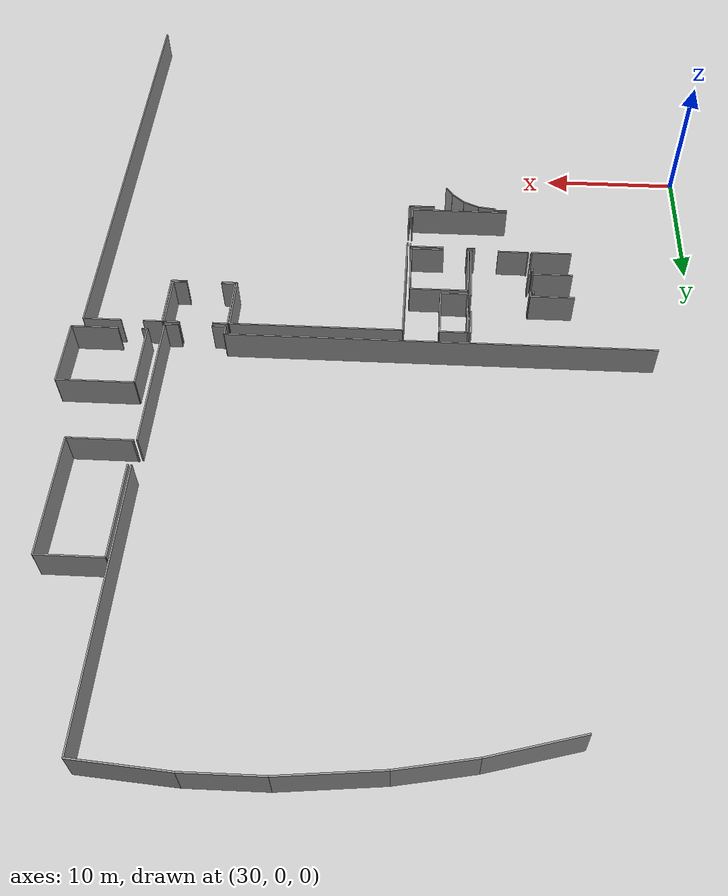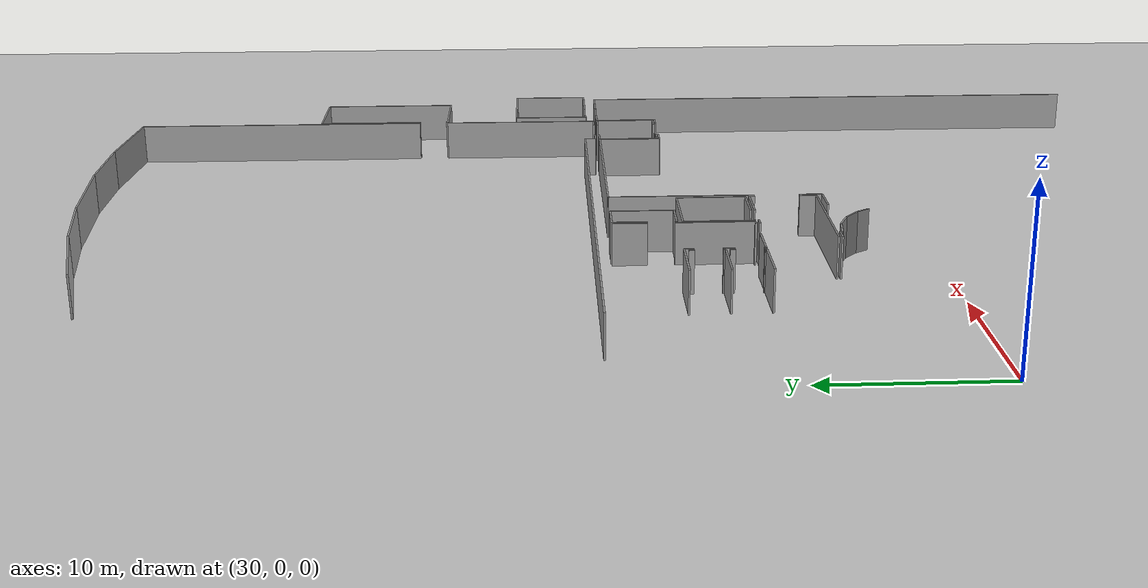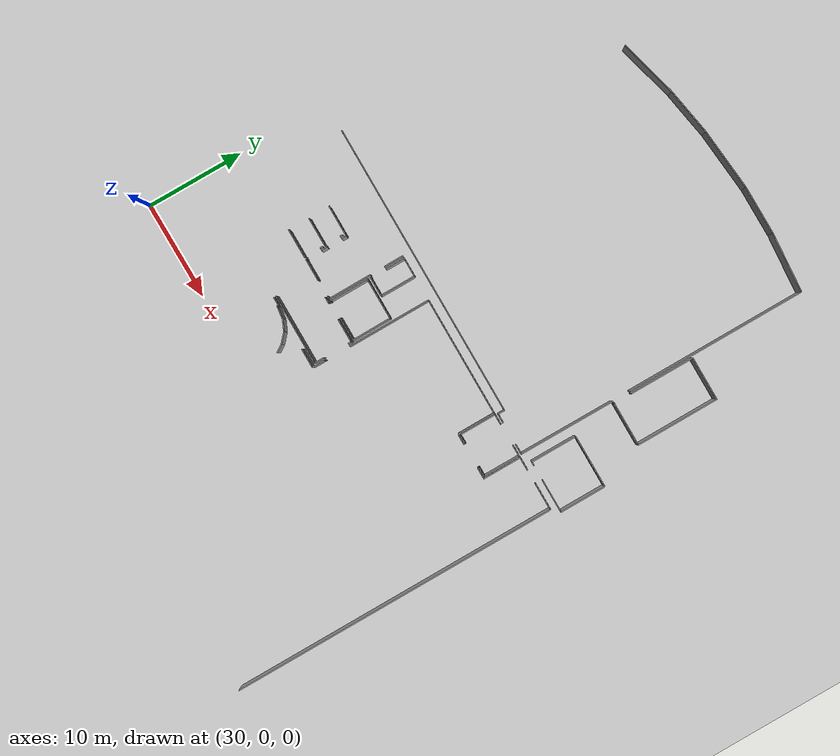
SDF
<sdf version="1.6">
 <world name="default">
  <model name="ground_plane">
   <static>1</static>
   <link name="link">
    <collision name="collision">
     <geometry><plane><normal>0 0 1</normal><size>100 100</size></plane></geometry>
     <surface><friction><ode><mu>100</mu><mu2>50</mu2></ode></friction></surface>
    </collision>
    <visual name="visual">
     <cast_shadows>0</cast_shadows>
     <geometry><plane><normal>0 0 1</normal><size>100 100</size></plane></geometry>
     <material>
      <script><uri>file://media/materials/scripts/gazebo.material</uri><name>Gazebo/Grey</name></script>
     </material>
    </visual>
   </link>
  </model>
  <model name="0510032218_A-40">
   <static>1</static>
   <link name="Wall_72">
    <collision name="Wall_72_Collision">
     <geometry><box><size>7.32015358741 0.1 2.5</size></box></geometry>
     <pose>3.6600767937 0 1.25 0 0 0</pose>
    </collision>
    <visual name="Wall_72_Visual">
     <pose>3.6600767937 0 1.25 0 0 0</pose>
     <geometry><box><size>7.32015358741 0.1 2.5</size></box></geometry>
     <material>
      <script><uri>file://media/materials/scripts/gazebo.material</uri><name>Gazebo/Grey</name></script>
      <ambient>1 1 1 1</ambient>
     </material>
    </visual>
    <pose>125.880328753 -43.4868149653 0 0 0 3.14159265359</pose>
   </link>
   <link name="Wall_82">
    <collision name="Wall_82_Collision">
     <geometry><box><size>0.630850760004 0.1 2.5</size></box></geometry>
     <pose>0.315425380002 0 1.25 0 0 0</pose>
    </collision>
    <visual name="Wall_82_Visual">
     <pose>0.315425380002 0 1.25 0 0 0</pose>
     <geometry><box><size>0.630850760004 0.1 2.5</size></box></geometry>
     <material>
      <script><uri>file://media/materials/scripts/gazebo.material</uri><name>Gazebo/Grey</name></script>
      <ambient>1 1 1 1</ambient>
     </material>
    </visual>
    <pose>120.999803256 -39.5045854092 0 0 0 0.0</pose>
   </link>
   <link name="Wall_83">
    <collision name="Wall_83_Collision">
     <geometry><box><size>2.49547805668 0.1 2.5</size></box></geometry>
     <pose>1.24773902834 0 1.25 0 0 0</pose>
    </collision>
    <visual name="Wall_83_Visual">
     <pose>1.24773902834 0 1.25 0 0 0</pose>
     <geometry><box><size>2.49547805668 0.1 2.5</size></box></geometry>
     <material>
      <script><uri>file://media/materials/scripts/gazebo.material</uri><name>Gazebo/Grey</name></script>
      <ambient>1 1 1 1</ambient>
     </material>
    </visual>
    <pose>123.379773427 -39.5045854092 0 0 0 0.0</pose>
   </link>
   <link name="Wall_84">
    <collision name="Wall_84_Collision">
     <geometry><box><size>0.340304001523 0.1 2.5</size></box></geometry>
     <pose>0.170152000762 0 1.25 0 0 0</pose>
    </collision>
    <visual name="Wall_84_Visual">
     <pose>0.170152000762 0 1.25 0 0 0</pose>
     <geometry><box><size>0.340304001523 0.1 2.5</size></box></geometry>
     <material>
      <script><uri>file://media/materials/scripts/gazebo.material</uri><name>Gazebo/Grey</name></script>
      <ambient>1 1 1 1</ambient>
     </material>
    </visual>
    <pose>125.875251484 -39.5045854092 0 0 0 -1.57079632679</pose>
   </link>
   <link name="Wall_85">
    <collision name="Wall_85_Collision">
     <geometry><box><size>0.99439623245 0.1 2.5</size></box></geometry>
     <pose>0.497198116225 0 1.25 0 0 0</pose>
    </collision>
    <visual name="Wall_85_Visual">
     <pose>0.497198116225 0 1.25 0 0 0</pose>
     <geometry><box><size>0.99439623245 0.1 2.5</size></box></geometry>
     <material>
      <script><uri>file://media/materials/scripts/gazebo.material</uri><name>Gazebo/Grey</name></script>
      <ambient>1 1 1 1</ambient>
     </material>
    </visual>
    <pose>125.875251484 -42.4924316949 0 0 0 -1.56569042274</pose>
   </link>
   <link name="Wall_123">
    <collision name="Wall_123_Collision">
     <geometry><box><size>0.313521403865 0.1 2.5</size></box></geometry>
     <pose>0.156760701933 0 1.25 0 0 0</pose>
    </collision>
    <visual name="Wall_123_Visual">
     <pose>0.156760701933 0 1.25 0 0 0</pose>
     <geometry><box><size>0.313521403865 0.1 2.5</size></box></geometry>
     <material>
      <script><uri>file://media/materials/scripts/gazebo.material</uri><name>Gazebo/Grey</name></script>
      <ambient>1 1 1 1</ambient>
     </material>
    </visual>
    <pose>121.318401929 -39.28537429 0 0 0 3.14159265359</pose>
   </link>
   <link name="Wall_124">
    <collision name="Wall_124_Collision">
     <geometry><box><size>2.28604068162 0.1 2.5</size></box></geometry>
     <pose>1.14302034081 0 1.25 0 0 0</pose>
    </collision>
    <visual name="Wall_124_Visual">
     <pose>1.14302034081 0 1.25 0 0 0</pose>
     <geometry><box><size>2.28604068162 0.1 2.5</size></box></geometry>
     <material>
      <script><uri>file://media/materials/scripts/gazebo.material</uri><name>Gazebo/Grey</name></script>
      <ambient>1 1 1 1</ambient>
     </material>
    </visual>
    <pose>119.264646336 -39.28537429 0 0 0 3.14159265359</pose>
   </link>
   <link name="Wall_125">
    <collision name="Wall_125_Collision">
     <geometry><box><size>0.102180052677 0.1 2.5</size></box></geometry>
     <pose>0.0510900263383 0 1.25 0 0 0</pose>
    </collision>
    <visual name="Wall_125_Visual">
     <pose>0.0510900263383 0 1.25 0 0 0</pose>
     <geometry><box><size>0.102180052677 0.1 2.5</size></box></geometry>
     <material>
      <script><uri>file://media/materials/scripts/gazebo.material</uri><name>Gazebo/Grey</name></script>
      <ambient>1 1 1 1</ambient>
     </material>
    </visual>
    <pose>116.978605655 -39.28537429 0 0 0 1.57079632679</pose>
   </link>
   <link name="Wall_126">
    <collision name="Wall_126_Collision">
     <geometry><box><size>0.64252848031 0.1 2.5</size></box></geometry>
     <pose>0.321264240155 0 1.25 0 0 0</pose>
    </collision>
    <visual name="Wall_126_Visual">
     <pose>0.321264240155 0 1.25 0 0 0</pose>
     <geometry><box><size>0.64252848031 0.1 2.5</size></box></geometry>
     <material>
      <script><uri>file://media/materials/scripts/gazebo.material</uri><name>Gazebo/Grey</name></script>
      <ambient>1 1 1 1</ambient>
     </material>
    </visual>
    <pose>116.978605655 -37.6187605115 0 0 0 1.57079632679</pose>
   </link>
   <link name="Wall_127">
    <collision name="Wall_127_Collision">
     <geometry><box><size>0.542506267255 0.1 2.5</size></box></geometry>
     <pose>0.271253133627 0 1.25 0 0 0</pose>
    </collision>
    <visual name="Wall_127_Visual">
     <pose>0.271253133627 0 1.25 0 0 0</pose>
     <geometry><box><size>0.542506267255 0.1 2.5</size></box></geometry>
     <material>
      <script><uri>file://media/materials/scripts/gazebo.material</uri><name>Gazebo/Grey</name></script>
      <ambient>1 1 1 1</ambient>
     </material>
    </visual>
    <pose>116.978605655 -35.423856821 0 0 0 1.57079632679</pose>
   </link>
   <link name="Wall_128">
    <collision name="Wall_128_Collision">
     <geometry><box><size>3.22228921398 0.1 2.5</size></box></geometry>
     <pose>1.61114460699 0 1.25 0 0 0</pose>
    </collision>
    <visual name="Wall_128_Visual">
     <pose>1.61114460699 0 1.25 0 0 0</pose>
     <geometry><box><size>3.22228921398 0.1 2.5</size></box></geometry>
     <material>
      <script><uri>file://media/materials/scripts/gazebo.material</uri><name>Gazebo/Grey</name></script>
      <ambient>1 1 1 1</ambient>
     </material>
    </visual>
    <pose>116.978605655 -34.8813505537 0 0 0 3.14159265359</pose>
   </link>
   <link name="Wall_131">
    <collision name="Wall_131_Collision">
     <geometry><box><size>2.01313743534 0.1 2.5</size></box></geometry>
     <pose>1.00656871767 0 1.25 0 0 0</pose>
    </collision>
    <visual name="Wall_131_Visual">
     <pose>1.00656871767 0 1.25 0 0 0</pose>
     <geometry><box><size>2.01313743534 0.1 2.5</size></box></geometry>
     <material>
      <script><uri>file://media/materials/scripts/gazebo.material</uri><name>Gazebo/Grey</name></script>
      <ambient>1 1 1 1</ambient>
     </material>
    </visual>
    <pose>121.305708755 -31.2202583061 0 0 0 -1.57079632679</pose>
   </link>
   <link name="Wall_132">
    <collision name="Wall_132_Collision">
     <geometry><box><size>4.51853399639 0.1 2.5</size></box></geometry>
     <pose>2.25926699819 0 1.25 0 0 0</pose>
    </collision>
    <visual name="Wall_132_Visual">
     <pose>2.25926699819 0 1.25 0 0 0</pose>
     <geometry><box><size>4.51853399639 0.1 2.5</size></box></geometry>
     <material>
      <script><uri>file://media/materials/scripts/gazebo.material</uri><name>Gazebo/Grey</name></script>
      <ambient>1 1 1 1</ambient>
     </material>
    </visual>
    <pose>121.305708755 -34.766858122 0 0 0 -1.5679871876</pose>
   </link>
   <link name="Wall_133">
    <collision name="Wall_133_Collision">
     <geometry><box><size>1.97378859518 0.1 2.5</size></box></geometry>
     <pose>0.986894297591 0 1.25 0 0 0</pose>
    </collision>
    <visual name="Wall_133_Visual">
     <pose>0.986894297591 0 1.25 0 0 0</pose>
     <geometry><box><size>1.97378859518 0.1 2.5</size></box></geometry>
     <material>
      <script><uri>file://media/materials/scripts/gazebo.material</uri><name>Gazebo/Grey</name></script>
      <ambient>1 1 1 1</ambient>
     </material>
    </visual>
    <pose>123.506705169 -34.8850315743 0 0 0 3.14159265359</pose>
   </link>
   <link name="Wall_134">
    <collision name="Wall_134_Collision">
     <geometry><box><size>0.0929140354774 0.1 2.5</size></box></geometry>
     <pose>0.0464570177387 0 1.25 0 0 0</pose>
    </collision>
    <visual name="Wall_134_Visual">
     <pose>0.0464570177387 0 1.25 0 0 0</pose>
     <geometry><box><size>0.0929140354774 0.1 2.5</size></box></geometry>
     <material>
      <script><uri>file://media/materials/scripts/gazebo.material</uri><name>Gazebo/Grey</name></script>
      <ambient>1 1 1 1</ambient>
     </material>
    </visual>
    <pose>121.532916574 -34.8850315743 0 0 0 1.57079632679</pose>
   </link>
   <link name="Wall_135">
    <collision name="Wall_135_Collision">
     <geometry><box><size>2.00310982769 0.1 2.5</size></box></geometry>
     <pose>1.00155491385 0 1.25 0 0 0</pose>
    </collision>
    <visual name="Wall_135_Visual">
     <pose>1.00155491385 0 1.25 0 0 0</pose>
     <geometry><box><size>2.00310982769 0.1 2.5</size></box></geometry>
     <material>
      <script><uri>file://media/materials/scripts/gazebo.material</uri><name>Gazebo/Grey</name></script>
      <ambient>1 1 1 1</ambient>
     </material>
    </visual>
    <pose>121.532916574 -33.2372036937 0 0 0 1.57079632679</pose>
   </link>
   <link name="Wall_136">
    <collision name="Wall_136_Collision">
     <geometry><box><size>1.97124996033 0.1 2.5</size></box></geometry>
     <pose>0.985624980167 0 1.25 0 0 0</pose>
    </collision>
    <visual name="Wall_136_Visual">
     <pose>0.985624980167 0 1.25 0 0 0</pose>
     <geometry><box><size>1.97124996033 0.1 2.5</size></box></geometry>
     <material>
      <script><uri>file://media/materials/scripts/gazebo.material</uri><name>Gazebo/Grey</name></script>
      <ambient>1 1 1 1</ambient>
     </material>
    </visual>
    <pose>121.532916574 -31.234093866 0 0 0 0.0</pose>
   </link>
   <link name="Wall_137">
    <collision name="Wall_137_Collision">
     <geometry><box><size>3.65093859085 0.1 2.5</size></box></geometry>
     <pose>1.82546929543 0 1.25 0 0 0</pose>
    </collision>
    <visual name="Wall_137_Visual">
     <pose>1.82546929543 0 1.25 0 0 0</pose>
     <geometry><box><size>3.65093859085 0.1 2.5</size></box></geometry>
     <material>
      <script><uri>file://media/materials/scripts/gazebo.material</uri><name>Gazebo/Grey</name></script>
      <ambient>1 1 1 1</ambient>
     </material>
    </visual>
    <pose>123.504166534 -31.234093866 0 0 0 -1.57010098915</pose>
   </link>
   <link name="Wall_138">
    <collision name="Wall_138_Collision">
     <geometry><box><size>2.96601402596 0.1 2.5</size></box></geometry>
     <pose>1.48300701298 0 1.25 0 0 0</pose>
    </collision>
    <visual name="Wall_138_Visual">
     <pose>1.48300701298 0 1.25 0 0 0</pose>
     <geometry><box><size>2.96601402596 0.1 2.5</size></box></geometry>
     <material>
      <script><uri>file://media/materials/scripts/gazebo.material</uri><name>Gazebo/Grey</name></script>
      <ambient>1 1 1 1</ambient>
     </material>
    </visual>
    <pose>116.748859201 -37.089201282 0 0 0 3.14159265359</pose>
   </link>
   <link name="Wall_141">
    <collision name="Wall_141_Collision">
     <geometry><box><size>0.307047885 0.1 2.5</size></box></geometry>
     <pose>0.1535239425 0 1.25 0 0 0</pose>
    </collision>
    <visual name="Wall_141_Visual">
     <pose>0.1535239425 0 1.25 0 0 0</pose>
     <geometry><box><size>0.307047885 0.1 2.5</size></box></geometry>
     <material>
      <script><uri>file://media/materials/scripts/gazebo.material</uri><name>Gazebo/Grey</name></script>
      <ambient>1 1 1 1</ambient>
     </material>
    </visual>
    <pose>116.739973979 -35.1165550725 0 0 0 -1.57079632679</pose>
   </link>
   <link name="Wall_142">
    <collision name="Wall_142_Collision">
     <geometry><box><size>0.120152544166 0.1 2.5</size></box></geometry>
     <pose>0.060076272083 0 1.25 0 0 0</pose>
    </collision>
    <visual name="Wall_142_Visual">
     <pose>0.060076272083 0 1.25 0 0 0</pose>
     <geometry><box><size>0.120152544166 0.1 2.5</size></box></geometry>
     <material>
      <script><uri>file://media/materials/scripts/gazebo.material</uri><name>Gazebo/Grey</name></script>
      <ambient>1 1 1 1</ambient>
     </material>
    </visual>
    <pose>116.739973979 -36.9693777171 0 0 0 -1.49677924949</pose>
   </link>
   <link name="Wall_143">
    <collision name="Wall_143_Collision">
     <geometry><box><size>3.00180877733 0.1 2.5</size></box></geometry>
     <pose>1.50090438866 0 1.25 0 0 0</pose>
    </collision>
    <visual name="Wall_143_Visual">
     <pose>1.50090438866 0 1.25 0 0 0</pose>
     <geometry><box><size>3.00180877733 0.1 2.5</size></box></geometry>
     <material>
      <script><uri>file://media/materials/scripts/gazebo.material</uri><name>Gazebo/Grey</name></script>
      <ambient>1 1 1 1</ambient>
     </material>
    </visual>
    <pose>116.760283058 -39.2905784914 0 0 0 3.14159265359</pose>
   </link>
   <link name="Wall_146">
    <collision name="Wall_146_Collision">
     <geometry><box><size>0.302986069241 0.1 2.5</size></box></geometry>
     <pose>0.151493034621 0 1.25 0 0 0</pose>
    </collision>
    <visual name="Wall_146_Visual">
     <pose>0.151493034621 0 1.25 0 0 0</pose>
     <geometry><box><size>0.302986069241 0.1 2.5</size></box></geometry>
     <material>
      <script><uri>file://media/materials/scripts/gazebo.material</uri><name>Gazebo/Grey</name></script>
      <ambient>1 1 1 1</ambient>
     </material>
    </visual>
    <pose>116.747589884 -37.3156475106 0 0 0 -1.57079632679</pose>
   </link>
   <link name="Wall_147">
    <collision name="Wall_147_Collision">
     <geometry><box><size>0.115950878798 0.1 2.5</size></box></geometry>
     <pose>0.0579754393991 0 1.25 0 0 0</pose>
    </collision>
    <visual name="Wall_147_Visual">
     <pose>0.0579754393991 0 1.25 0 0 0</pose>
     <geometry><box><size>0.115950878798 0.1 2.5</size></box></geometry>
     <material>
      <script><uri>file://media/materials/scripts/gazebo.material</uri><name>Gazebo/Grey</name></script>
      <ambient>1 1 1 1</ambient>
     </material>
    </visual>
    <pose>116.747589884 -39.1753244693 0 0 0 -1.46110622331</pose>
   </link>
   <link name="Wall_148">
    <collision name="Wall_148_Collision">
     <geometry><box><size>2.45105194682 0.1 2.5</size></box></geometry>
     <pose>1.22552597341 0 1.25 0 0 0</pose>
    </collision>
    <visual name="Wall_148_Visual">
     <pose>1.22552597341 0 1.25 0 0 0</pose>
     <geometry><box><size>2.45105194682 0.1 2.5</size></box></geometry>
     <material>
      <script><uri>file://media/materials/scripts/gazebo.material</uri><name>Gazebo/Grey</name></script>
      <ambient>1 1 1 1</ambient>
     </material>
    </visual>
    <pose>125.815593565 -39.2731888427 0 0 0 3.14159265359</pose>
   </link>
   <link name="Wall_149">
    <collision name="Wall_149_Collision">
     <geometry><box><size>0.124393107606 0.1 2.5</size></box></geometry>
     <pose>0.0621965538032 0 1.25 0 0 0</pose>
    </collision>
    <visual name="Wall_149_Visual">
     <pose>0.0621965538032 0 1.25 0 0 0</pose>
     <geometry><box><size>0.124393107606 0.1 2.5</size></box></geometry>
     <material>
      <script><uri>file://media/materials/scripts/gazebo.material</uri><name>Gazebo/Grey</name></script>
      <ambient>1 1 1 1</ambient>
     </material>
    </visual>
    <pose>121.644616507 -39.2731888427 0 0 0 3.14159265359</pose>
   </link>
   <link name="Wall_150">
    <collision name="Wall_150_Collision">
     <geometry><box><size>4.05584996668 0.1 2.5</size></box></geometry>
     <pose>2.02792498334 0 1.25 0 0 0</pose>
    </collision>
    <visual name="Wall_150_Visual">
     <pose>2.02792498334 0 1.25 0 0 0</pose>
     <geometry><box><size>4.05584996668 0.1 2.5</size></box></geometry>
     <material>
      <script><uri>file://media/materials/scripts/gazebo.material</uri><name>Gazebo/Grey</name></script>
      <ambient>1 1 1 1</ambient>
     </material>
    </visual>
    <pose>121.5202234 -39.2731888427 0 0 0 1.57079632679</pose>
   </link>
   <link name="Wall_151">
    <collision name="Wall_151_Collision">
     <geometry><box><size>4.2649065465 0.1 2.5</size></box></geometry>
     <pose>2.13245327325 0 1.25 0 0 0</pose>
    </collision>
    <visual name="Wall_151_Visual">
     <pose>2.13245327325 0 1.25 0 0 0</pose>
     <geometry><box><size>4.2649065465 0.1 2.5</size></box></geometry>
     <material>
      <script><uri>file://media/materials/scripts/gazebo.material</uri><name>Gazebo/Grey</name></script>
      <ambient>1 1 1 1</ambient>
     </material>
    </visual>
    <pose>121.5202234 -35.217338876 0 0 0 0.0</pose>
   </link>
   <link name="Wall_152">
    <collision name="Wall_152_Collision">
     <geometry><box><size>4.05596437167 0.1 2.5</size></box></geometry>
     <pose>2.02798218583 0 1.25 0 0 0</pose>
    </collision>
    <visual name="Wall_152_Visual">
     <pose>2.02798218583 0 1.25 0 0 0</pose>
     <geometry><box><size>4.05596437167 0.1 2.5</size></box></geometry>
     <material>
      <script><uri>file://media/materials/scripts/gazebo.material</uri><name>Gazebo/Grey</name></script>
      <ambient>1 1 1 1</ambient>
     </material>
    </visual>
    <pose>125.785129946 -35.217338876 0 0 0 -1.56328543621</pose>
   </link>
   <link name="Wall_159">
    <collision name="Wall_159_Collision">
     <geometry><box><size>0.888522197188 0.1 2.5</size></box></geometry>
     <pose>0.444261098594 0 1.25 0 0 0</pose>
    </collision>
    <visual name="Wall_159_Visual">
     <pose>0.444261098594 0 1.25 0 0 0</pose>
     <geometry><box><size>0.888522197188 0.1 2.5</size></box></geometry>
     <material>
      <script><uri>file://media/materials/scripts/gazebo.material</uri><name>Gazebo/Grey</name></script>
      <ambient>1 1 1 1</ambient>
     </material>
    </visual>
    <pose>118.561444483 -43.7017104052 0 0 0 0.0</pose>
   </link>
   <link name="Wall_160">
    <collision name="Wall_160_Collision">
     <geometry><box><size>0.145209913369 0.1 2.5</size></box></geometry>
     <pose>0.0726049566845 0 1.25 0 0 0</pose>
    </collision>
    <visual name="Wall_160_Visual">
     <pose>0.0726049566845 0 1.25 0 0 0</pose>
     <geometry><box><size>0.145209913369 0.1 2.5</size></box></geometry>
     <material>
      <script><uri>file://media/materials/scripts/gazebo.material</uri><name>Gazebo/Grey</name></script>
      <ambient>1 1 1 1</ambient>
     </material>
    </visual>
    <pose>119.44996668 -43.7017104052 0 0 0 -1.57079632679</pose>
   </link>
   <link name="Wall_161">
    <collision name="Wall_161_Collision">
     <geometry><box><size>1.29701786086 0.1 2.5</size></box></geometry>
     <pose>0.648508930432 0 1.25 0 0 0</pose>
    </collision>
    <visual name="Wall_161_Visual">
     <pose>0.648508930432 0 1.25 0 0 0</pose>
     <geometry><box><size>1.29701786086 0.1 2.5</size></box></geometry>
     <material>
      <script><uri>file://media/materials/scripts/gazebo.material</uri><name>Gazebo/Grey</name></script>
      <ambient>1 1 1 1</ambient>
     </material>
    </visual>
    <pose>119.44996668 -43.8469203186 0 0 0 -0.123820897343</pose>
   </link>
   <link name="Wall_162">
    <collision name="Wall_162_Collision">
     <geometry><box><size>1.23232163786 0.1 2.5</size></box></geometry>
     <pose>0.616160818931 0 1.25 0 0 0</pose>
    </collision>
    <visual name="Wall_162_Visual">
     <pose>0.616160818931 0 1.25 0 0 0</pose>
     <geometry><box><size>1.23232163786 0.1 2.5</size></box></geometry>
     <material>
      <script><uri>file://media/materials/scripts/gazebo.material</uri><name>Gazebo/Grey</name></script>
      <ambient>1 1 1 1</ambient>
     </material>
    </visual>
    <pose>120.737054549 -44.0071081776 0 0 0 -0.418674035671</pose>
   </link>
   <link name="Wall_163">
    <collision name="Wall_163_Collision">
     <geometry><box><size>1.20014740458 0.1 2.5</size></box></geometry>
     <pose>0.600073702289 0 1.25 0 0 0</pose>
    </collision>
    <visual name="Wall_163_Visual">
     <pose>0.600073702289 0 1.25 0 0 0</pose>
     <geometry><box><size>1.20014740458 0.1 2.5</size></box></geometry>
     <material>
      <script><uri>file://media/materials/scripts/gazebo.material</uri><name>Gazebo/Grey</name></script>
      <ambient>1 1 1 1</ambient>
     </material>
    </visual>
    <pose>121.862939104 -44.508107765 0 0 0 -0.726132916375</pose>
   </link>
   <link name="Wall_164">
    <collision name="Wall_164_Collision">
     <geometry><box><size>0.910411231059 0.1 2.5</size></box></geometry>
     <pose>0.455205615529 0 1.25 0 0 0</pose>
    </collision>
    <visual name="Wall_164_Visual">
     <pose>0.455205615529 0 1.25 0 0 0</pose>
     <geometry><box><size>0.910411231059 0.1 2.5</size></box></geometry>
     <material>
      <script><uri>file://media/materials/scripts/gazebo.material</uri><name>Gazebo/Grey</name></script>
      <ambient>1 1 1 1</ambient>
     </material>
    </visual>
    <pose>122.760346524 -45.3049852442 0 0 0 -0.975833278811</pose>
   </link>
   <link name="Wall_202">
    <collision name="Wall_202_Collision">
     <geometry><box><size>1.99282835655 0.1 2.5</size></box></geometry>
     <pose>0.996414178276 0 1.25 0 0 0</pose>
    </collision>
    <visual name="Wall_202_Visual">
     <pose>0.996414178276 0 1.25 0 0 0</pose>
     <geometry><box><size>1.99282835655 0.1 2.5</size></box></geometry>
     <material>
      <script><uri>file://media/materials/scripts/gazebo.material</uri><name>Gazebo/Grey</name></script>
      <ambient>1 1 1 1</ambient>
     </material>
    </visual>
    <pose>124.133747977 -43.8687525783 0 0 0 0.0</pose>
   </link>
   <link name="Wall_203">
    <collision name="Wall_203_Collision">
     <geometry><box><size>1.36172373306 0.1 2.5</size></box></geometry>
     <pose>0.680861866531 0 1.25 0 0 0</pose>
    </collision>
    <visual name="Wall_203_Visual">
     <pose>0.680861866531 0 1.25 0 0 0</pose>
     <geometry><box><size>1.36172373306 0.1 2.5</size></box></geometry>
     <material>
      <script><uri>file://media/materials/scripts/gazebo.material</uri><name>Gazebo/Grey</name></script>
      <ambient>1 1 1 1</ambient>
     </material>
    </visual>
    <pose>126.126576334 -43.8687525783 0 0 0 1.57079632679</pose>
   </link>
   <link name="Wall_204">
    <collision name="Wall_204_Collision">
     <geometry><box><size>8.62031542538 0.1 2.5</size></box></geometry>
     <pose>4.31015771269 0 1.25 0 0 0</pose>
    </collision>
    <visual name="Wall_204_Visual">
     <pose>4.31015771269 0 1.25 0 0 0</pose>
     <geometry><box><size>8.62031542538 0.1 2.5</size></box></geometry>
     <material>
      <script><uri>file://media/materials/scripts/gazebo.material</uri><name>Gazebo/Grey</name></script>
      <ambient>1 1 1 1</ambient>
     </material>
    </visual>
    <pose>126.126576334 -39.8582172437 0 0 0 1.57079632679</pose>
   </link>
   <link name="Wall_205">
    <collision name="Wall_205_Collision">
     <geometry><box><size>12.3618823977 0.1 2.5</size></box></geometry>
     <pose>6.18094119887 0 1.25 0 0 0</pose>
    </collision>
    <visual name="Wall_205_Visual">
     <pose>6.18094119887 0 1.25 0 0 0</pose>
     <geometry><box><size>12.3618823977 0.1 2.5</size></box></geometry>
     <material>
      <script><uri>file://media/materials/scripts/gazebo.material</uri><name>Gazebo/Grey</name></script>
      <ambient>1 1 1 1</ambient>
     </material>
    </visual>
    <pose>126.126576334 -31.2379018183 0 0 0 0.0</pose>
   </link>
   <link name="Wall_206">
    <collision name="Wall_206_Collision">
     <geometry><box><size>3.92650652112 0.1 2.5</size></box></geometry>
     <pose>1.96325326056 0 1.25 0 0 0</pose>
    </collision>
    <visual name="Wall_206_Visual">
     <pose>1.96325326056 0 1.25 0 0 0</pose>
     <geometry><box><size>3.92650652112 0.1 2.5</size></box></geometry>
     <material>
      <script><uri>file://media/materials/scripts/gazebo.material</uri><name>Gazebo/Grey</name></script>
      <ambient>1 1 1 1</ambient>
     </material>
    </visual>
    <pose>138.488458731 -31.2379018183 0 0 0 -1.57079632679</pose>
   </link>
   <link name="Wall_207">
    <collision name="Wall_207_Collision">
     <geometry><box><size>1.10557547679 0.1 2.5</size></box></geometry>
     <pose>0.552787738394 0 1.25 0 0 0</pose>
    </collision>
    <visual name="Wall_207_Visual">
     <pose>0.552787738394 0 1.25 0 0 0</pose>
     <geometry><box><size>1.10557547679 0.1 2.5</size></box></geometry>
     <material>
      <script><uri>file://media/materials/scripts/gazebo.material</uri><name>Gazebo/Grey</name></script>
      <ambient>1 1 1 1</ambient>
     </material>
    </visual>
    <pose>138.488458731 -35.1644083394 0 0 0 0.0</pose>
   </link>
   <link name="Wall_208">
    <collision name="Wall_208_Collision">
     <geometry><box><size>1.13603909498 0.1 2.5</size></box></geometry>
     <pose>0.568019547488 0 1.25 0 0 0</pose>
    </collision>
    <visual name="Wall_208_Visual">
     <pose>0.568019547488 0 1.25 0 0 0</pose>
     <geometry><box><size>1.13603909498 0.1 2.5</size></box></geometry>
     <material>
      <script><uri>file://media/materials/scripts/gazebo.material</uri><name>Gazebo/Grey</name></script>
      <ambient>1 1 1 1</ambient>
     </material>
    </visual>
    <pose>142.182172437 -35.1644083394 0 0 0 0.0</pose>
   </link>
   <link name="Wall_209">
    <collision name="Wall_209_Collision">
     <geometry><box><size>3.94694253165 0.1 2.5</size></box></geometry>
     <pose>1.97347126583 0 1.25 0 0 0</pose>
    </collision>
    <visual name="Wall_209_Visual">
     <pose>1.97347126583 0 1.25 0 0 0</pose>
     <geometry><box><size>3.94694253165 0.1 2.5</size></box></geometry>
     <material>
      <script><uri>file://media/materials/scripts/gazebo.material</uri><name>Gazebo/Grey</name></script>
      <ambient>1 1 1 1</ambient>
     </material>
    </visual>
    <pose>143.318211532 -35.1644083394 0 0 0 1.57079632679</pose>
   </link>
   <link name="Wall_210">
    <collision name="Wall_210_Collision">
     <geometry><box><size>1.38482531019 0.1 2.5</size></box></geometry>
     <pose>0.692412655095 0 1.25 0 0 0</pose>
    </collision>
    <visual name="Wall_210_Visual">
     <pose>0.692412655095 0 1.25 0 0 0</pose>
     <geometry><box><size>1.38482531019 0.1 2.5</size></box></geometry>
     <material>
      <script><uri>file://media/materials/scripts/gazebo.material</uri><name>Gazebo/Grey</name></script>
      <ambient>1 1 1 1</ambient>
     </material>
    </visual>
    <pose>143.318211532 -31.2174658078 0 0 0 0.0</pose>
   </link>
   <link name="Wall_211">
    <collision name="Wall_211_Collision">
     <geometry><box><size>2.73791768477 0.1 2.5</size></box></geometry>
     <pose>1.36895884238 0 1.25 0 0 0</pose>
    </collision>
    <visual name="Wall_211_Visual">
     <pose>1.36895884238 0 1.25 0 0 0</pose>
     <geometry><box><size>2.73791768477 0.1 2.5</size></box></geometry>
     <material>
      <script><uri>file://media/materials/scripts/gazebo.material</uri><name>Gazebo/Grey</name></script>
      <ambient>1 1 1 1</ambient>
     </material>
    </visual>
    <pose>146.268105226 -31.2174658078 0 0 0 0.0</pose>
   </link>
   <link name="Wall_212">
    <collision name="Wall_212_Collision">
     <geometry><box><size>33.954241961 0.1 2.5</size></box></geometry>
     <pose>16.9771209805 0 1.25 0 0 0</pose>
    </collision>
    <visual name="Wall_212_Visual">
     <pose>16.9771209805 0 1.25 0 0 0</pose>
     <geometry><box><size>33.954241961 0.1 2.5</size></box></geometry>
     <material>
      <script><uri>file://media/materials/scripts/gazebo.material</uri><name>Gazebo/Grey</name></script>
      <ambient>1 1 1 1</ambient>
     </material>
    </visual>
    <pose>149.006022911 -31.2174658078 0 0 0 -1.57102062586</pose>
   </link>
   <link name="Wall_213">
    <collision name="Wall_213_Collision">
     <geometry><box><size>0.992606226002 0.1 2.5</size></box></geometry>
     <pose>0.496303113001 0 1.25 0 0 0</pose>
    </collision>
    <visual name="Wall_213_Visual">
     <pose>0.496303113001 0 1.25 0 0 0</pose>
     <geometry><box><size>0.992606226002 0.1 2.5</size></box></geometry>
     <material>
      <script><uri>file://media/materials/scripts/gazebo.material</uri><name>Gazebo/Grey</name></script>
      <ambient>1 1 1 1</ambient>
     </material>
    </visual>
    <pose>143.089734395 -30.9619522102 0 0 0 3.14159265359</pose>
   </link>
   <link name="Wall_214">
    <collision name="Wall_214_Collision">
     <geometry><box><size>0.979913051756 0.1 2.5</size></box></geometry>
     <pose>0.489956525878 0 1.25 0 0 0</pose>
    </collision>
    <visual name="Wall_214_Visual">
     <pose>0.489956525878 0 1.25 0 0 0</pose>
     <geometry><box><size>0.979913051756 0.1 2.5</size></box></geometry>
     <material>
      <script><uri>file://media/materials/scripts/gazebo.material</uri><name>Gazebo/Grey</name></script>
      <ambient>1 1 1 1</ambient>
     </material>
    </visual>
    <pose>139.708272776 -30.9619522102 0 0 0 3.14159265359</pose>
   </link>
   <link name="Wall_215">
    <collision name="Wall_215_Collision">
     <geometry><box><size>0.693428109034 0.1 2.5</size></box></geometry>
     <pose>0.346714054517 0 1.25 0 0 0</pose>
    </collision>
    <visual name="Wall_215_Visual">
     <pose>0.346714054517 0 1.25 0 0 0</pose>
     <geometry><box><size>0.693428109034 0.1 2.5</size></box></geometry>
     <material>
      <script><uri>file://media/materials/scripts/gazebo.material</uri><name>Gazebo/Grey</name></script>
      <ambient>1 1 1 1</ambient>
     </material>
    </visual>
    <pose>138.728359725 -30.9619522102 0 0 0 1.57079632679</pose>
   </link>
   <link name="Wall_216">
    <collision name="Wall_216_Collision">
     <geometry><box><size>30.5581823374 0.1 2.5</size></box></geometry>
     <pose>15.2790911687 0 1.25 0 0 0</pose>
    </collision>
    <visual name="Wall_216_Visual">
     <pose>15.2790911687 0 1.25 0 0 0</pose>
     <geometry><box><size>30.5581823374 0.1 2.5</size></box></geometry>
     <material>
      <script><uri>file://media/materials/scripts/gazebo.material</uri><name>Gazebo/Grey</name></script>
      <ambient>1 1 1 1</ambient>
     </material>
    </visual>
    <pose>138.728359725 -30.2685241012 0 0 0 3.14159265359</pose>
   </link>
   <link name="Wall_220">
    <collision name="Wall_220_Collision">
     <geometry><box><size>6.16229994988 0.1 2.5</size></box></geometry>
     <pose>3.08114997494 0 1.25 0 0 0</pose>
    </collision>
    <visual name="Wall_220_Visual">
     <pose>3.08114997494 0 1.25 0 0 0</pose>
     <geometry><box><size>6.16229994988 0.1 2.5</size></box></geometry>
     <material>
      <script><uri>file://media/materials/scripts/gazebo.material</uri><name>Gazebo/Grey</name></script>
      <ambient>1 1 1 1</ambient>
     </material>
    </visual>
    <pose>114.64572716 -3.13631834481 0 0 0 0.260595094122</pose>
   </link>
   <link name="Wall_221">
    <collision name="Wall_221_Collision">
     <geometry><box><size>4.9919690111 0.1 2.5</size></box></geometry>
     <pose>2.49598450555 0 1.25 0 0 0</pose>
    </collision>
    <visual name="Wall_221_Visual">
     <pose>2.49598450555 0 1.25 0 0 0</pose>
     <geometry><box><size>4.9919690111 0.1 2.5</size></box></geometry>
     <material>
      <script><uri>file://media/materials/scripts/gazebo.material</uri><name>Gazebo/Grey</name></script>
      <ambient>1 1 1 1</ambient>
     </material>
    </visual>
    <pose>120.599968267 -1.54856725796 0 0 0 0.178943788877</pose>
   </link>
   <link name="Wall_222">
    <collision name="Wall_222_Collision">
     <geometry><box><size>6.46665842704 0.1 2.5</size></box></geometry>
     <pose>3.23332921352 0 1.25 0 0 0</pose>
    </collision>
    <visual name="Wall_222_Visual">
     <pose>3.23332921352 0 1.25 0 0 0</pose>
     <geometry><box><size>6.46665842704 0.1 2.5</size></box></geometry>
     <material>
      <script><uri>file://media/materials/scripts/gazebo.material</uri><name>Gazebo/Grey</name></script>
      <ambient>1 1 1 1</ambient>
     </material>
    </visual>
    <pose>125.5122267 -0.660045060769 0 0 0 0.098301465843</pose>
   </link>
   <link name="Wall_223">
    <collision name="Wall_223_Collision">
     <geometry><box><size>5.02656110777 0.1 2.5</size></box></geometry>
     <pose>2.51328055388 0 1.25 0 0 0</pose>
    </collision>
    <visual name="Wall_223_Visual">
     <pose>2.51328055388 0 1.25 0 0 0</pose>
     <geometry><box><size>5.02656110777 0.1 2.5</size></box></geometry>
     <material>
      <script><uri>file://media/materials/scripts/gazebo.material</uri><name>Gazebo/Grey</name></script>
      <ambient>1 1 1 1</ambient>
     </material>
    </visual>
    <pose>131.947666043 -0.0253863484911 0 0 0 0.00505046210907</pose>
   </link>
   <link name="Wall_224">
    <collision name="Wall_224_Collision">
     <geometry><box><size>6.15953854927 0.1 2.5</size></box></geometry>
     <pose>3.07976927464 0 1.25 0 0 0</pose>
    </collision>
    <visual name="Wall_224_Visual">
     <pose>3.07976927464 0 1.25 0 0 0</pose>
     <geometry><box><size>6.15953854927 0.1 2.5</size></box></geometry>
     <material>
      <script><uri>file://media/materials/scripts/gazebo.material</uri><name>Gazebo/Grey</name></script>
      <ambient>1 1 1 1</ambient>
     </material>
    </visual>
    <pose>136.974163044 -0.0 0 0 0 -0.0721883924681</pose>
   </link>
   <link name="Wall_225">
    <collision name="Wall_225_Collision">
     <geometry><box><size>18.6631548885 0.1 2.5</size></box></geometry>
     <pose>9.33157744423 0 1.25 0 0 0</pose>
    </collision>
    <visual name="Wall_225_Visual">
     <pose>9.33157744423 0 1.25 0 0 0</pose>
     <geometry><box><size>18.6631548885 0.1 2.5</size></box></geometry>
     <material>
      <script><uri>file://media/materials/scripts/gazebo.material</uri><name>Gazebo/Grey</name></script>
      <ambient>1 1 1 1</ambient>
     </material>
    </visual>
    <pose>143.117659379 -0.444261098594 0 0 0 -1.57079632679</pose>
   </link>
   <link name="Wall_226">
    <collision name="Wall_226_Collision">
     <geometry><box><size>9.9559303824 0.1 2.5</size></box></geometry>
     <pose>4.9779651912 0 1.25 0 0 0</pose>
    </collision>
    <visual name="Wall_226_Visual">
     <pose>4.9779651912 0 1.25 0 0 0</pose>
     <geometry><box><size>9.9559303824 0.1 2.5</size></box></geometry>
     <material>
      <script><uri>file://media/materials/scripts/gazebo.material</uri><name>Gazebo/Grey</name></script>
      <ambient>1 1 1 1</ambient>
     </material>
    </visual>
    <pose>143.117659379 -21.0060609907 0 0 0 -1.57360118971</pose>
   </link>
   <link name="Wall_227">
    <collision name="Wall_227_Collision">
     <geometry><box><size>1.00910735252 0.1 2.5</size></box></geometry>
     <pose>0.504553676261 0 1.25 0 0 0</pose>
    </collision>
    <visual name="Wall_227_Visual">
     <pose>0.504553676261 0 1.25 0 0 0</pose>
     <geometry><box><size>1.00910735252 0.1 2.5</size></box></geometry>
     <material>
      <script><uri>file://media/materials/scripts/gazebo.material</uri><name>Gazebo/Grey</name></script>
      <ambient>1 1 1 1</ambient>
     </material>
    </visual>
    <pose>143.183663885 -35.0398883001 0 0 0 3.14159265359</pose>
   </link>
   <link name="Wall_228">
    <collision name="Wall_228_Collision">
     <geometry><box><size>0.993875543426 0.1 2.5</size></box></geometry>
     <pose>0.496937771713 0 1.25 0 0 0</pose>
    </collision>
    <visual name="Wall_228_Visual">
     <pose>0.496937771713 0 1.25 0 0 0</pose>
     <geometry><box><size>0.993875543426 0.1 2.5</size></box></geometry>
     <material>
      <script><uri>file://media/materials/scripts/gazebo.material</uri><name>Gazebo/Grey</name></script>
      <ambient>1 1 1 1</ambient>
     </material>
    </visual>
    <pose>139.613073969 -35.0398883001 0 0 0 3.14159265359</pose>
   </link>
   <link name="Wall_229">
    <collision name="Wall_229_Collision">
     <geometry><box><size>3.81061784026 0.1 2.5</size></box></geometry>
     <pose>1.90530892013 0 1.25 0 0 0</pose>
    </collision>
    <visual name="Wall_229_Visual">
     <pose>1.90530892013 0 1.25 0 0 0</pose>
     <geometry><box><size>3.81061784026 0.1 2.5</size></box></geometry>
     <material>
      <script><uri>file://media/materials/scripts/gazebo.material</uri><name>Gazebo/Grey</name></script>
      <ambient>1 1 1 1</ambient>
     </material>
    </visual>
    <pose>138.619198426 -35.0398883001 0 0 0 1.57079632679</pose>
   </link>
   <link name="Wall_230">
    <collision name="Wall_230_Collision">
     <geometry><box><size>1.08526639799 0.1 2.5</size></box></geometry>
     <pose>0.542633198997 0 1.25 0 0 0</pose>
    </collision>
    <visual name="Wall_230_Visual">
     <pose>0.542633198997 0 1.25 0 0 0</pose>
     <geometry><box><size>1.08526639799 0.1 2.5</size></box></geometry>
     <material>
      <script><uri>file://media/materials/scripts/gazebo.material</uri><name>Gazebo/Grey</name></script>
      <ambient>1 1 1 1</ambient>
     </material>
    </visual>
    <pose>138.619198426 -31.2292704598 0 0 0 0.0</pose>
   </link>
   <link name="Wall_231">
    <collision name="Wall_231_Collision">
     <geometry><box><size>1.11319138133 0.1 2.5</size></box></geometry>
     <pose>0.556595690667 0 1.25 0 0 0</pose>
    </collision>
    <visual name="Wall_231_Visual">
     <pose>0.556595690667 0 1.25 0 0 0</pose>
     <geometry><box><size>1.11319138133 0.1 2.5</size></box></geometry>
     <material>
      <script><uri>file://media/materials/scripts/gazebo.material</uri><name>Gazebo/Grey</name></script>
      <ambient>1 1 1 1</ambient>
     </material>
    </visual>
    <pose>142.078088408 -31.2292704598 0 0 0 0.0</pose>
   </link>
   <link name="Wall_232">
    <collision name="Wall_232_Collision">
     <geometry><box><size>3.81062545083 0.1 2.5</size></box></geometry>
     <pose>1.90531272541 0 1.25 0 0 0</pose>
    </collision>
    <visual name="Wall_232_Visual">
     <pose>1.90531272541 0 1.25 0 0 0</pose>
     <geometry><box><size>3.81062545083 0.1 2.5</size></box></geometry>
     <material>
      <script><uri>file://media/materials/scripts/gazebo.material</uri><name>Gazebo/Grey</name></script>
      <ambient>1 1 1 1</ambient>
     </material>
    </visual>
    <pose>143.191279789 -31.2292704598 0 0 0 -1.57279492511</pose>
   </link>
   <link name="Wall_233">
    <collision name="Wall_233_Collision">
     <geometry><box><size>3.35861390537 0.1 2.5</size></box></geometry>
     <pose>1.67930695269 0 1.25 0 0 0</pose>
    </collision>
    <visual name="Wall_233_Visual">
     <pose>1.67930695269 0 1.25 0 0 0</pose>
     <geometry><box><size>3.35861390537 0.1 2.5</size></box></geometry>
     <material>
      <script><uri>file://media/materials/scripts/gazebo.material</uri><name>Gazebo/Grey</name></script>
      <ambient>1 1 1 1</ambient>
     </material>
    </visual>
    <pose>149.699070225 -30.4700917082 0 0 0 3.14159265359</pose>
   </link>
   <link name="Wall_234">
    <collision name="Wall_234_Collision">
     <geometry><box><size>0.41252816298 0.1 2.5</size></box></geometry>
     <pose>0.20626408149 0 1.25 0 0 0</pose>
    </collision>
    <visual name="Wall_234_Visual">
     <pose>0.20626408149 0 1.25 0 0 0</pose>
     <geometry><box><size>0.41252816298 0.1 2.5</size></box></geometry>
     <material>
      <script><uri>file://media/materials/scripts/gazebo.material</uri><name>Gazebo/Grey</name></script>
      <ambient>1 1 1 1</ambient>
     </material>
    </visual>
    <pose>144.640840288 -30.4700917082 0 0 0 3.14159265359</pose>
   </link>
   <link name="Wall_235">
    <collision name="Wall_235_Collision">
     <geometry><box><size>4.77009488148 0.1 2.5</size></box></geometry>
     <pose>2.38504744074 0 1.25 0 0 0</pose>
    </collision>
    <visual name="Wall_235_Visual">
     <pose>2.38504744074 0 1.25 0 0 0</pose>
     <geometry><box><size>4.77009488148 0.1 2.5</size></box></geometry>
     <material>
      <script><uri>file://media/materials/scripts/gazebo.material</uri><name>Gazebo/Grey</name></script>
      <ambient>1 1 1 1</ambient>
     </material>
    </visual>
    <pose>144.228312125 -30.4700917082 0 0 0 1.57079632679</pose>
   </link>
   <link name="Wall_236">
    <collision name="Wall_236_Collision">
     <geometry><box><size>5.46314219528 0.1 2.5</size></box></geometry>
     <pose>2.73157109764 0 1.25 0 0 0</pose>
    </collision>
    <visual name="Wall_236_Visual">
     <pose>2.73157109764 0 1.25 0 0 0</pose>
     <geometry><box><size>5.46314219528 0.1 2.5</size></box></geometry>
     <material>
      <script><uri>file://media/materials/scripts/gazebo.material</uri><name>Gazebo/Grey</name></script>
      <ambient>1 1 1 1</ambient>
     </material>
    </visual>
    <pose>144.228312125 -25.6999968267 0 0 0 0.0</pose>
   </link>
   <link name="Wall_237">
    <collision name="Wall_237_Collision">
     <geometry><box><size>4.77010096123 0.1 2.5</size></box></geometry>
     <pose>2.38505048061 0 1.25 0 0 0</pose>
    </collision>
    <visual name="Wall_237_Visual">
     <pose>2.38505048061 0 1.25 0 0 0</pose>
     <geometry><box><size>4.77010096123 0.1 2.5</size></box></geometry>
     <material>
      <script><uri>file://media/materials/scripts/gazebo.material</uri><name>Gazebo/Grey</name></script>
      <ambient>1 1 1 1</ambient>
     </material>
    </visual>
    <pose>149.69145432 -25.6999968267 0 0 0 -1.56919973422</pose>
   </link>
   <link name="Wall_238">
    <collision name="Wall_238_Collision">
     <geometry><box><size>4.51496207914 0.1 2.5</size></box></geometry>
     <pose>2.25748103957 0 1.25 0 0 0</pose>
    </collision>
    <visual name="Wall_238_Visual">
     <pose>2.25748103957 0 1.25 0 0 0</pose>
     <geometry><box><size>4.51496207914 0.1 2.5</size></box></geometry>
     <material>
      <script><uri>file://media/materials/scripts/gazebo.material</uri><name>Gazebo/Grey</name></script>
      <ambient>1 1 1 1</ambient>
     </material>
    </visual>
    <pose>147.880138356 -20.9950179291 0 0 0 3.14159265359</pose>
   </link>
   <link name="Wall_239">
    <collision name="Wall_239_Collision">
     <geometry><box><size>0.0992606226002 0.1 2.5</size></box></geometry>
     <pose>0.0496303113001 0 1.25 0 0 0</pose>
    </collision>
    <visual name="Wall_239_Visual">
     <pose>0.0496303113001 0 1.25 0 0 0</pose>
     <geometry><box><size>0.0992606226002 0.1 2.5</size></box></geometry>
     <material>
      <script><uri>file://media/materials/scripts/gazebo.material</uri><name>Gazebo/Grey</name></script>
      <ambient>1 1 1 1</ambient>
     </material>
    </visual>
    <pose>143.365176276 -20.9950179291 0 0 0 1.57079632679</pose>
   </link>
   <link name="Wall_240">
    <collision name="Wall_240_Collision">
     <geometry><box><size>6.69031828134 0.1 2.5</size></box></geometry>
     <pose>3.34515914067 0 1.25 0 0 0</pose>
    </collision>
    <visual name="Wall_240_Visual">
     <pose>3.34515914067 0 1.25 0 0 0</pose>
     <geometry><box><size>6.69031828134 0.1 2.5</size></box></geometry>
     <material>
      <script><uri>file://media/materials/scripts/gazebo.material</uri><name>Gazebo/Grey</name></script>
      <ambient>1 1 1 1</ambient>
     </material>
    </visual>
    <pose>143.365176276 -19.1297559737 0 0 0 1.57079632679</pose>
   </link>
   <link name="Wall_241">
    <collision name="Wall_241_Collision">
     <geometry><box><size>4.5022689049 0.1 2.5</size></box></geometry>
     <pose>2.25113445245 0 1.25 0 0 0</pose>
    </collision>
    <visual name="Wall_241_Visual">
     <pose>2.25113445245 0 1.25 0 0 0</pose>
     <geometry><box><size>4.5022689049 0.1 2.5</size></box></geometry>
     <material>
      <script><uri>file://media/materials/scripts/gazebo.material</uri><name>Gazebo/Grey</name></script>
      <ambient>1 1 1 1</ambient>
     </material>
    </visual>
    <pose>143.365176276 -12.4394376924 0 0 0 0.0</pose>
   </link>
   <link name="Wall_242">
    <collision name="Wall_242_Collision">
     <geometry><box><size>8.5555896526 0.1 2.5</size></box></geometry>
     <pose>4.2777948263 0 1.25 0 0 0</pose>
    </collision>
    <visual name="Wall_242_Visual">
     <pose>4.2777948263 0 1.25 0 0 0</pose>
     <geometry><box><size>8.5555896526 0.1 2.5</size></box></geometry>
     <material>
      <script><uri>file://media/materials/scripts/gazebo.material</uri><name>Gazebo/Grey</name></script>
      <ambient>1 1 1 1</ambient>
     </material>
    </visual>
    <pose>147.867445181 -12.4394376924 0 0 0 -1.56931271439</pose>
   </link>
   <pose>-74.8 49.7517929109 0 0 0 0</pose>
  </model>
 </world>
</sdf>
